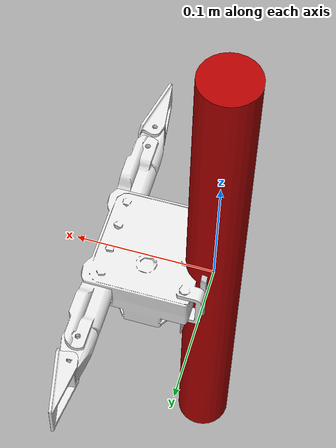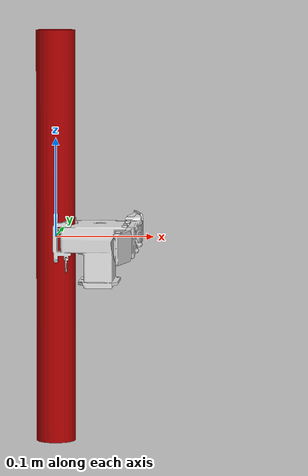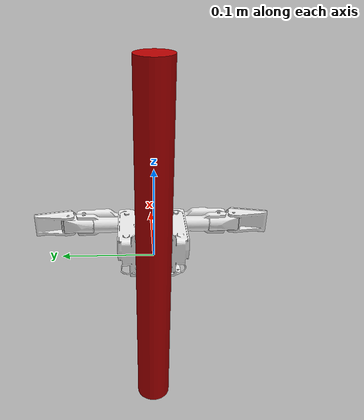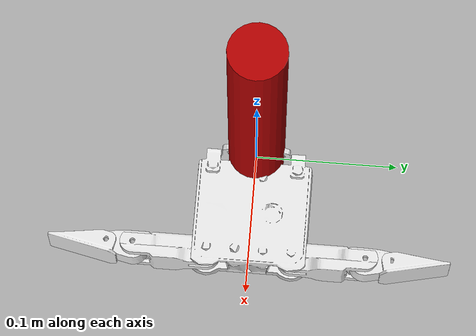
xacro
<?xml version="1.0" encoding="UTF-8"?>
<robot name="ezgripper_stand_alone" xmlns:xacro="http://ros.org/wiki/xacro">

<xacro:property name="ezgripper_offset_x" value="0.0"/>
<xacro:property name="ezgripper_offset_y" value="0.0"/>
<xacro:property name="ezgripper_offset_z" value="0.0"/>

<xacro:include filename="$(find ezgripper_driver)/urdf/ezgripper_dual_gen2_plus_articulated.urdf.xacro"/>
<!-- Add the gripper -->
<xacro:ezgripper_dual prefix="main" parent_link="base_link">
  <origin xyz="${ezgripper_offset_x} ${ezgripper_offset_y} ${ezgripper_offset_z}" rpy="0 0 0"/>
</xacro:ezgripper_dual>

<material name="red">
  <color rgba="0.7 0.0 0.0 0.99"/>
</material>

<link name="world"/>
<joint name="fixed" type="fixed">
  <parent link="world"/>
  <child link="base_link"/>
</joint>
<link name="base_link">
   <visual>
       <geometry>
           <cylinder length="0.42" radius="0.02"/>
        </geometry>
        <origin rpy="0 0 0" xyz="0 0 0.0"/>
        <material name="red"/>
    </visual>
</link>

</robot>

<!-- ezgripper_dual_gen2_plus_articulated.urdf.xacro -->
<robot name="ezgripper" xmlns:xacro="http://ros.org/wiki/xacro">
<xacro:macro name="ezgripper_dual" params="prefix parent_link *origin">

    <material name="${prefix}White_Plastic">
      <color rgba="0.9 0.9 0.9 1.0"/>
    </material>

    <material name="${prefix}Black_Plastic">
      <color rgba="0.1 0.1 0.1 1.0"/>
    </material>

    <!-- links -->

    <link name="${prefix}_ezgripper_palm_link">
      <visual>
        <origin xyz="0 0 0" rpy="0 0 0"/>
        <geometry>
          <mesh filename="package://ezgripper_driver/meshes/ezgripper_gen2_plus/SAKE_Palm_Dual_Gen2_simple.stl"/>
        </geometry>
        <material name="${prefix}White_Plastic"/>
      </visual>
      <collision>
        <origin xyz="0 0 0" rpy="0 0 0"/>
        <geometry>
          <mesh filename="package://ezgripper_driver/meshes/ezgripper_gen2_plus/SAKE_Palm_Dual_Gen2_collision.stl"/>
        </geometry>
      </collision>
    <inertial>
      <mass value=".3"/>
      <inertia ixx="0.01" ixy="0.0" ixz="0.0" iyy="0.01" iyz="0.0" izz="0.01"/>
    </inertial>
    </link>

    <joint name="${prefix}_ezgripper_connect" type="fixed">
        <xacro:insert_block name="origin" />
        <parent link="${parent_link}"/>
        <child link="${prefix}_ezgripper_palm_link"/>
        <axis xyz="0 0 0"/>
        <limit effort="0" lower="-1.57075" upper="0.25" velocity="3.67"/>
    </joint>

    <xacro:ezgripper_finger_L1 prefix="${prefix}" postfix="1" reflect="1" />
    <xacro:ezgripper_finger_L1 prefix="${prefix}" postfix="2" reflect="1" />

    <xacro:ezgripper_finger_L2 prefix="${prefix}" postfix="1" reflect="1" />
    <xacro:ezgripper_finger_L2 prefix="${prefix}" postfix="2" reflect="1" />

    <xacro:ezgripper_finger_L2_pad prefix="${prefix}" postfix="1" reflect="1" />
    <xacro:ezgripper_finger_L2_pad prefix="${prefix}" postfix="2" reflect="1" />

    <xacro:ezgripper_knuckle_palm_L1 prefix="${prefix}" postfix="1" reflectY="1" reflectZ="1" reflectR="1" mimic_test="false"/>
    <xacro:ezgripper_knuckle_palm_L1 prefix="${prefix}" postfix="2" reflectY="-1" reflectZ="1" reflectR="-1" mimic_test="true"/>

    <xacro:ezgripper_knuckle_L1_L2 prefix="${prefix}" postfix="1" reflectY="1" reflectZ="1" reflectR="-1" mimic_test="false"/>
    <xacro:ezgripper_knuckle_L1_L2 prefix="${prefix}" postfix="2" reflectY="-1" reflectZ="1" reflectR="1" mimic_test="true"/>

    <xacro:ezgripper_mount_L2 prefix="${prefix}" postfix="1" reflectY="1" reflectZ="1" reflectR="-1" mimic_test="false"/>
    <xacro:ezgripper_mount_L2 prefix="${prefix}" postfix="2" reflectY="-1" reflectZ="1" reflectR="1" mimic_test="true"/>

    <xacro:ezgripper_knuckle_trans prefix="${prefix}" postfix="L1_L2_1"/>
    <xacro:ezgripper_knuckle_trans prefix="${prefix}" postfix="L1_L2_2"/>

    <xacro:gazebo_knuckle_jsp prefix="${prefix}" />

</xacro:macro>

<xacro:macro name="ezgripper_finger_L1" params="prefix postfix reflect">
    <link name="${prefix}_ezgripper_finger_L1_${postfix}">
      <visual>
        <origin xyz="0 0 0" rpy="0 0 0"/>
        <geometry>
          <mesh filename="package://ezgripper_driver/meshes/ezgripper_gen2_plus/SAKE_Finger_L1_Gen2_simple.stl"/>
        </geometry>
        <material name="${prefix}White_Plastic"/>
      </visual>
      <collision>
        <origin xyz="0 0 0" rpy="0 0 0"/>
        <geometry>
          <mesh filename="package://ezgripper_driver/meshes/ezgripper_gen2_plus/SAKE_Finger_L1_Gen2_collision.stl"/>
        </geometry>
      </collision>
      <inertial>
        <mass value=".025"/>
        <inertia ixx="0.01" ixy="0.0" ixz="0.0" iyy="0.01" iyz="0.0" izz="0.01"/>
      </inertial>
    </link>
</xacro:macro>

<xacro:macro name="ezgripper_finger_L2" params="prefix postfix reflect">
    <link name="${prefix}_ezgripper_finger_L2_${postfix}">
      <visual>
        <origin xyz="0 0 0" rpy="0 0 0"/>
        <geometry>
          <mesh filename="package://ezgripper_driver/meshes/ezgripper_gen2_plus/SAKE_Finger_L2_Gen2_simple.stl"/>
        </geometry>
        <material name="${prefix}White_Plastic"/>
      </visual>
      <collision>
        <origin xyz="0 0 0" rpy="0 0 0"/>
        <geometry>
          <mesh filename="package://ezgripper_driver/meshes/ezgripper_gen2_plus/SAKE_Finger_L2_Gen2_collision.stl"/>
        </geometry>
      </collision>
      <inertial>
        <mass value=".025"/>
        <inertia ixx="0.01" ixy="0.0" ixz="0.0" iyy="0.01" iyz="0.0" izz="0.01"/>
      </inertial>
    </link>
</xacro:macro>

<xacro:macro name="ezgripper_finger_L2_pad" params="prefix postfix reflect">
    <link name="${prefix}_ezgripper_finger_L2_pad_${postfix}">
      <visual>
        <origin xyz="0 0 0" rpy="0 0 0"/>
        <geometry>
          <mesh filename="package://ezgripper_driver/meshes/ezgripper_gen2_plus/SAKE_Finger_L2_Pad_simple.stl"/>
        </geometry>
        <material name="${prefix}White_Plastic"/>
      </visual>
      <collision>
        <origin xyz="0 0 0" rpy="0 0 0"/>
        <geometry>
          <mesh filename="package://ezgripper_driver/meshes/ezgripper_gen2_plus/SAKE_Finger_L2_Pad_collision.stl"/>
        </geometry>
      </collision>
      <inertial>
        <mass value=".025"/>
        <inertia ixx="0.01" ixy="0.0" ixz="0.0" iyy="0.01" iyz="0.0" izz="0.01"/>
      </inertial>
    </link>
</xacro:macro>

    <!-- joints -->

<xacro:macro name="ezgripper_knuckle_palm_L1" params="prefix postfix reflectY reflectZ reflectR mimic_test">
    <joint name="${prefix}_ezgripper_knuckle_palm_L1_${postfix}" type="revolute">
      <parent link="${prefix}_ezgripper_palm_link"/>
      <child link="${prefix}_ezgripper_finger_L1_${postfix}"/>
      <origin xyz="0.072569 ${reflectY*0.03} 0" rpy="${-1.5708 * reflectR} 0 ${1.57075 * reflectR}"/>
      <axis xyz="0 1 0"/>
      <limit lower="0" upper="1.94" effort="1" velocity="3.67"/>
      <xacro:if value="${mimic_test}">
           <mimic joint="${prefix}_ezgripper_knuckle_palm_L1_1"/>
      </xacro:if>
    </joint>
</xacro:macro>

<xacro:macro name="ezgripper_knuckle_L1_L2" params="prefix postfix reflectY reflectZ reflectR mimic_test">
    <joint name="${prefix}_ezgripper_knuckle_L1_L2_${postfix}" type="revolute">
      <parent link="${prefix}_ezgripper_finger_L1_${postfix}"/>
      <child link="${prefix}_ezgripper_finger_L2_${postfix}"/>
      <origin xyz="0.052 0 0" rpy="0 0 0"/>
      <axis xyz="0 1 0"/>
      <limit lower="0" upper="1.94" effort="1" velocity="3.67"/>
      <xacro:if value="${mimic_test}">
           <mimic joint="${prefix}_ezgripper_knuckle_L1_L2_1"/>
      </xacro:if>
    </joint>
</xacro:macro>

<xacro:macro name="ezgripper_mount_L2" params="prefix postfix reflectY reflectZ reflectR mimic_test">
    <joint name="${prefix}_ezgripper_mount_L2_${postfix}" type="fixed">
        <origin xyz="0.0185 0.0003 0" rpy="0 -0.215 0"/>
        <parent link="${prefix}_ezgripper_finger_L2_${postfix}"/>
        <child link="${prefix}_ezgripper_finger_L2_pad_${postfix}"/>
        <axis xyz="0 0 0"/>
        <limit effort="0" lower="-1.57075" upper="0.25" velocity="3.67"/>
    </joint>
</xacro:macro>

    <!-- transmissions for Gazebo -->

<xacro:macro name="ezgripper_knuckle_trans" params="prefix postfix">
   <transmission name="${prefix}_ezgripper_trans_${postfix}">
      <type>transmission_interface/SimpleTransmission</type>
      <joint name="${prefix}_ezgripper_knuckle_${postfix}">
         <hardwareInterface>hardware_interface/PositionJointInterface</hardwareInterface>
      </joint>
      <actuator name="${prefix}_ezgripper_motor${postfix}">
         <mechanicalReduction>1</mechanicalReduction>
         <hardwareInterface>hardware_interface/PositionJointInterface</hardwareInterface>
      </actuator>
   </transmission>
</xacro:macro>

<xacro:macro name="gazebo_knuckle_jsp" params="prefix">
   <gazebo>
     <plugin name="joint_state_publisher" filename="libgazebo_ros_joint_state_publisher.so">
       <jointName>${prefix}_ezgripper_knuckle_L1_L2_1,${prefix}_ezgripper_knuckle_L1_L2_2</jointName>
     </plugin>
   </gazebo>
</xacro:macro>

<gazebo>
   <plugin name="gazebo_ros_control" filename="libgazebo_ros_control.so">
   </plugin>
</gazebo>
</robot>
